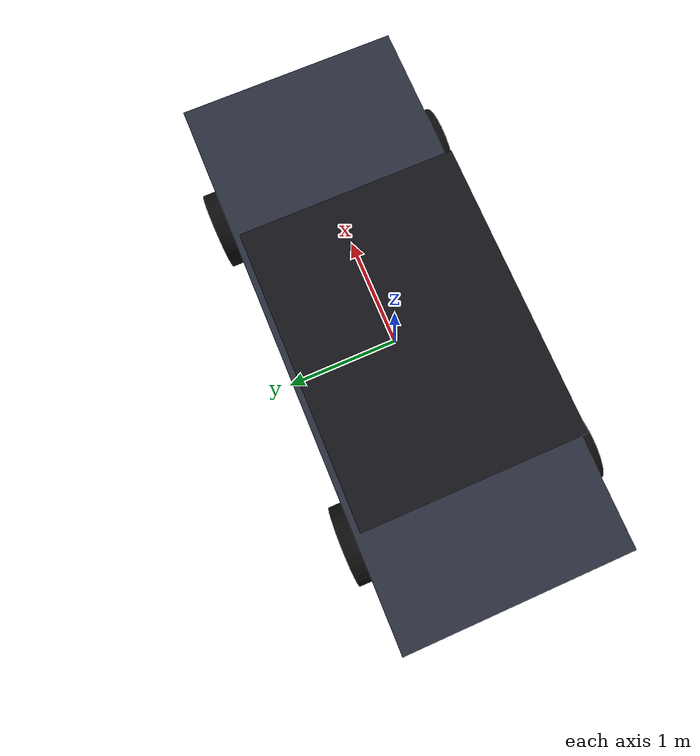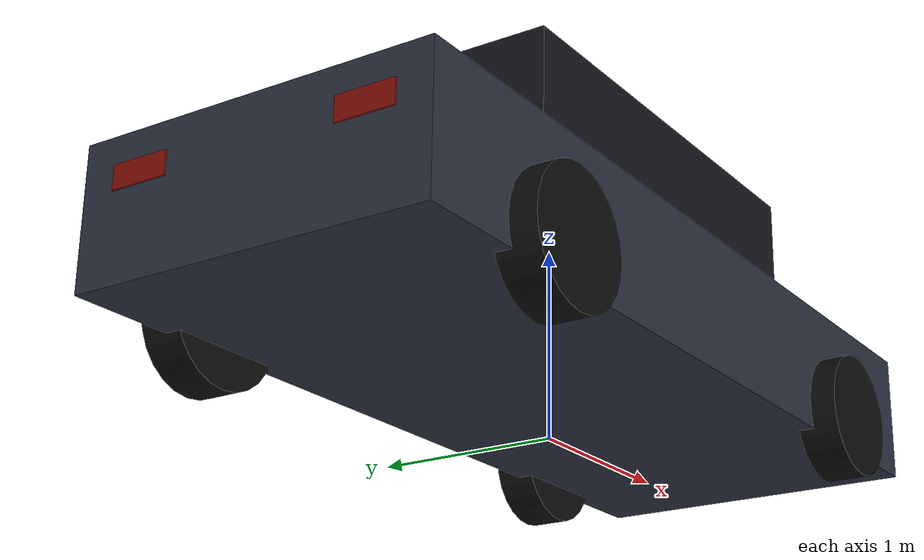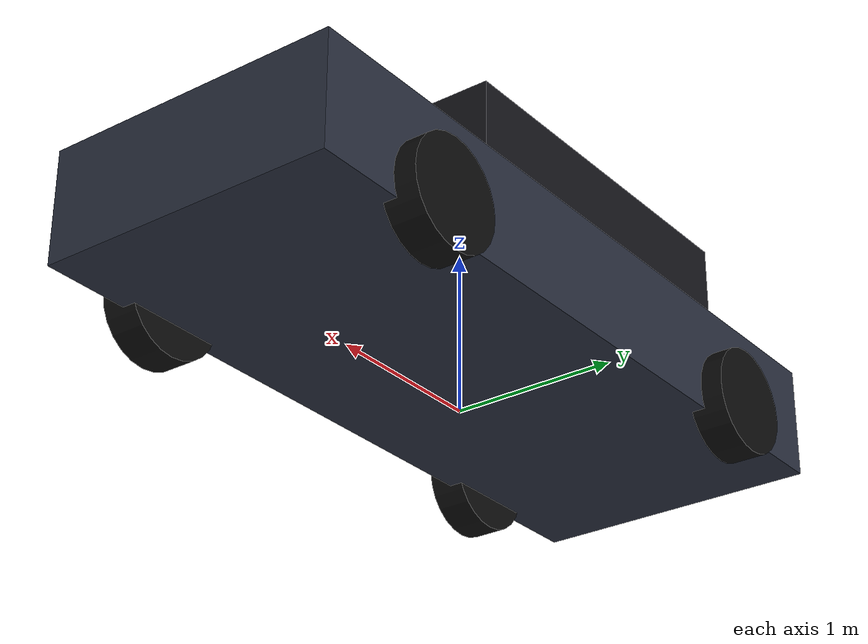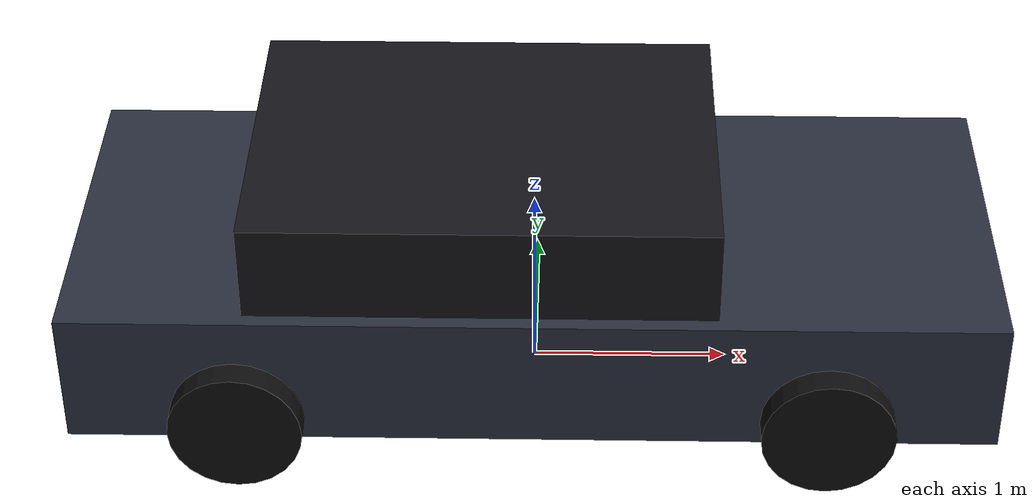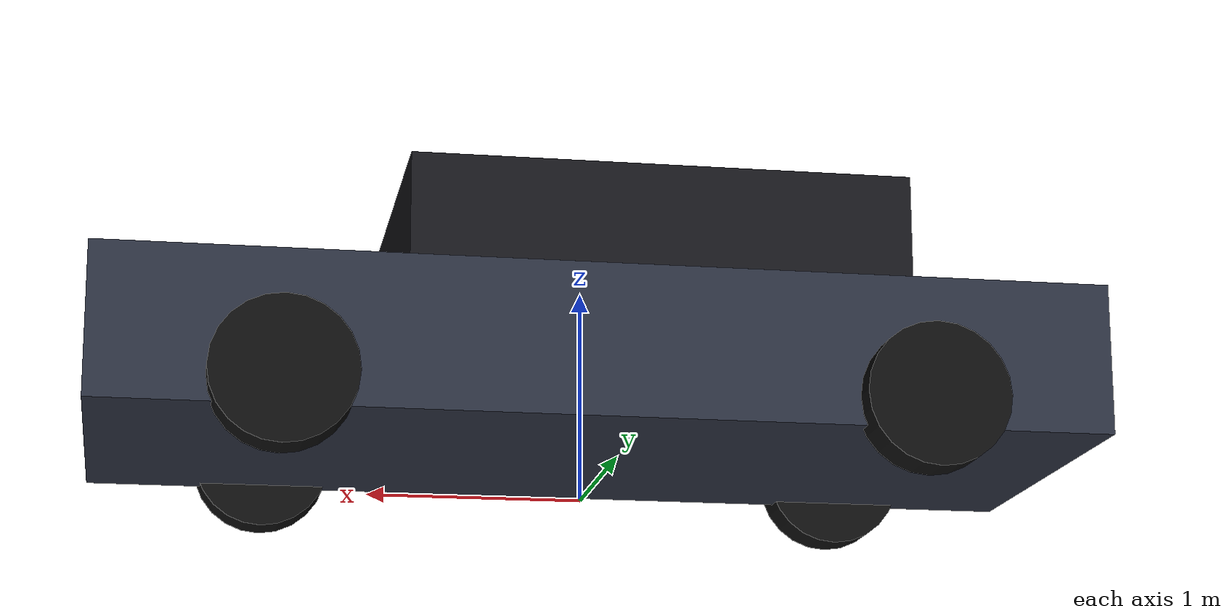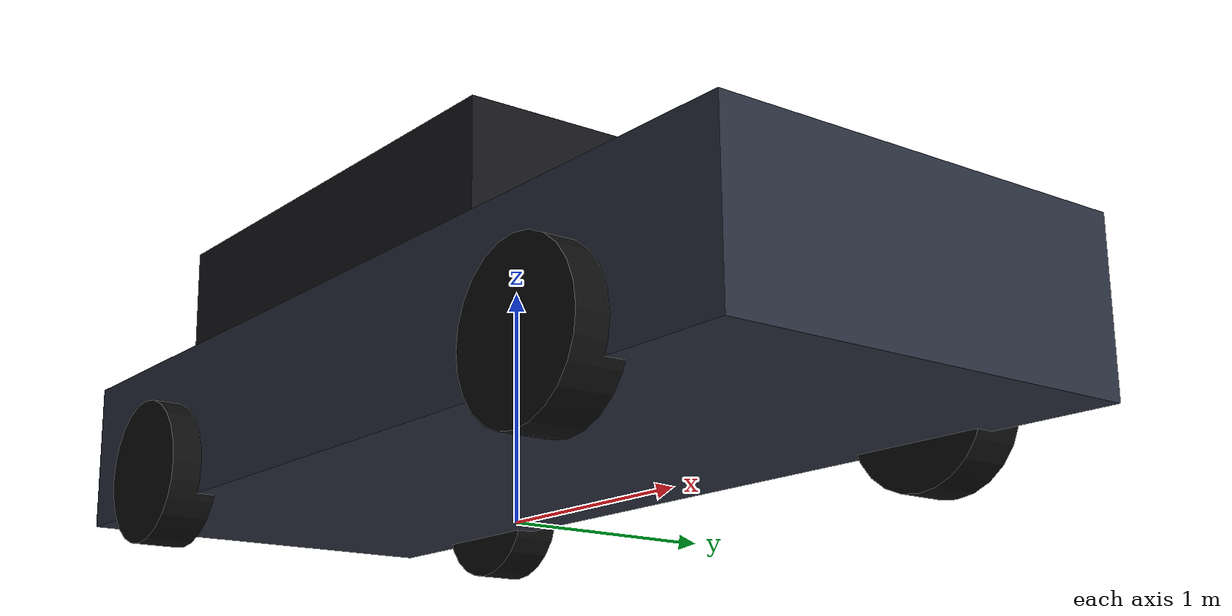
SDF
<?xml version="1.0"?>
<!-- 세단 (4.6 x 1.85 x 1.45 m) — 야간 도시의 차폐물/배경 차량 -->
<sdf version="1.9">
  <model name="car">
    <static>true</static>
    <link name="body">
      <visual name="lower">
        <pose>0 0 0.55 0 0 0</pose>
        <geometry><box><size>4.6 1.85 0.7</size></box></geometry>
        <material><ambient>0.08 0.09 0.12 1</ambient><diffuse>0.16 0.18 0.24 1</diffuse>
          <specular>0.3 0.3 0.3 1</specular></material>
      </visual>
      <visual name="cabin">
        <pose>-0.25 0 1.12 0 0 0</pose>
        <geometry><box><size>2.3 1.7 0.55</size></box></geometry>
        <material><ambient>0.04 0.04 0.05 1</ambient><diffuse>0.08 0.08 0.1 1</diffuse>
          <specular>0.4 0.4 0.45 1</specular></material>
      </visual>
      <visual name="wheel_fl"><pose>1.45 0.95 0.33 1.5708 0 0</pose>
        <geometry><cylinder><radius>0.33</radius><length>0.22</length></cylinder></geometry>
        <material><diffuse>0.05 0.05 0.05 1</diffuse></material></visual>
      <visual name="wheel_fr"><pose>1.45 -0.95 0.33 1.5708 0 0</pose>
        <geometry><cylinder><radius>0.33</radius><length>0.22</length></cylinder></geometry>
        <material><diffuse>0.05 0.05 0.05 1</diffuse></material></visual>
      <visual name="wheel_bl"><pose>-1.45 0.95 0.33 1.5708 0 0</pose>
        <geometry><cylinder><radius>0.33</radius><length>0.22</length></cylinder></geometry>
        <material><diffuse>0.05 0.05 0.05 1</diffuse></material></visual>
      <visual name="wheel_br"><pose>-1.45 -0.95 0.33 1.5708 0 0</pose>
        <geometry><cylinder><radius>0.33</radius><length>0.22</length></cylinder></geometry>
        <material><diffuse>0.05 0.05 0.05 1</diffuse></material></visual>
      <visual name="taillight_l"><pose>-2.3 0.6 0.7 0 0 0</pose>
        <geometry><box><size>0.02 0.3 0.12</size></box></geometry>
        <material><emissive>0.6 0.05 0.02 1</emissive><diffuse>0.5 0.05 0.02 1</diffuse></material></visual>
      <visual name="taillight_r"><pose>-2.3 -0.6 0.7 0 0 0</pose>
        <geometry><box><size>0.02 0.3 0.12</size></box></geometry>
        <material><emissive>0.6 0.05 0.02 1</emissive><diffuse>0.5 0.05 0.02 1</diffuse></material></visual>
      <collision name="col">
        <pose>0 0 0.75 0 0 0</pose>
        <geometry><box><size>4.6 1.85 1.45</size></box></geometry>
      </collision>
    </link>
  </model>
</sdf>
